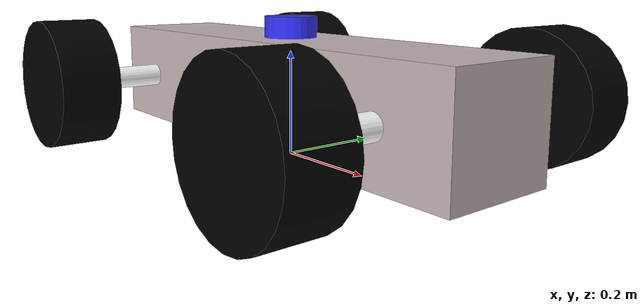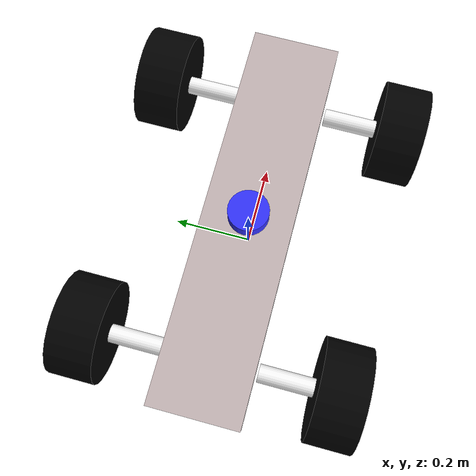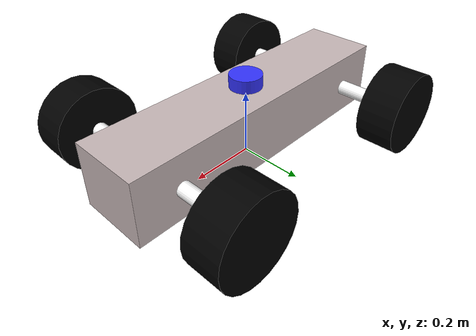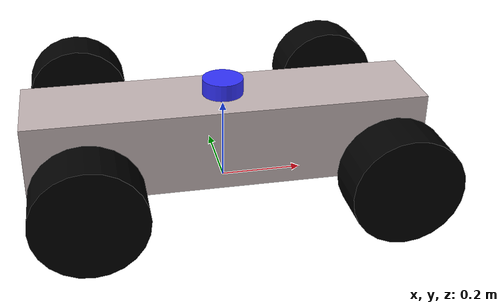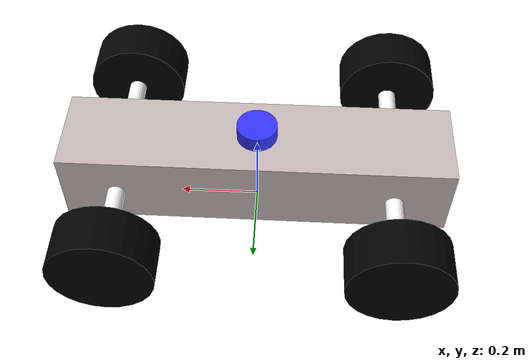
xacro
<?xml version="1.0"?>
<robot xmlns:xacro="http://www.ros.org/wiki/xacro">

    <xacro:include filename="inertial_macros.xacro"/>

    <!-- Colour options for robot -->
    <material name="blue">
        <color rgba="0.2 0.2 1.0 1.0"/>
    </material>

    <material name="black">
        <color rgba="0.0 0.0 0.0 1.0"/>
    </material>

    <material name="white">
        <color rgba="1.0 1.0 1.0 1.0"/>
    </material>

    <material name="silver">
        <!--color rgba="0.62 0.62 0.62 0.5"/-->
        <color rgba="0.78 0.72 0.72 1.0"/>
    </material>

    <!-- Base link is centre of the 2 drive wheels -->
    <link name="base_link">

    </link>

    <!-- Chassis link - box shape with origin just behind the wheels (l/w/h 964.3/231.23/200)-->
    <joint name="chassis_joint" type="fixed">
        <parent link="base_link"/>
        <child link="chassis"/>
        <origin xyz="0 0 0.12725"/>
    </joint>

    <link name="chassis">
        <visual>
            <origin xyz="0 0 0"/>
            <geometry>
                <box size="0.96423 0.22 0.2"/>
            </geometry>
            <material name="silver"/>
        </visual>
        <collision>
            <origin xyz="0 0 0"/>
            <geometry>
                <box size="0.96423 0.22 0.2"/>
            </geometry>
        </collision>
        <xacro:inertial_box mass="0.5" x="0.3" y="0.3" z="0.15">
            <origin xyz="0 0 0" rpy="0 0 0"/>
        </xacro:inertial_box>
    </link>

    <!-- Left front wheel link -->

    <joint name="left_front_wheel_joint" type="continuous">
        <parent link="base_link" />
        <child link="left_front_wheel"/>
        <origin xyz="-0.34264 -0.309055 0.12725" rpy="-${pi/2} 0 0"/>
        <axis xyz="-0.34264 -0.309055 0.12725"/>
    </joint>

    <link name="left_front_wheel">
        <visual>
            <origin xyz="0 0 0"/>
            <geometry>
                <cylinder radius="0.12725" length="0.1144"/>
            </geometry>
            <material name="black"/>
        </visual>
        <collision>
            <origin xyz="0 0 0"/>
            <geometry>
                <cylinder radius="0.12725" length="0.1144"/>
            </geometry>
        </collision>
        <xacro:inertial_cylinder mass="0.1" length="0.1144" radius="0.12725">
            <origin xyz="0 0 0" rpy="0 0 0"/>
        </xacro:inertial_cylinder>
    </link>

    <!-- To show colour on gazebo -->

    <gazebo reference="left_front_wheel">
        <material>Gazebo/Black</material>
    </gazebo>

    <!-- Left back wheel link -->

    <joint name="left_back_wheel_joint" type="continuous">
        <parent link="base_link" />
        <child link="left_back_wheel"/>
        <origin xyz="0.34264 -0.309055 0.12725" rpy="-${pi/2} 0 0"/>
        <axis xyz="0.34264 -0.309055 0.12725"/>
    </joint>

    <link name="left_back_wheel">
        <visual>
            <origin xyz="0 0 0"/>
            <geometry>
                <cylinder radius="0.12725" length="0.1144"/>
            </geometry>
            <material name="black"/>
        </visual>
        <collision>
            <origin xyz="0 0 0"/>
            <geometry>
                <cylinder radius="0.12725" length="0.1144"/>
            </geometry>
        </collision>
        <xacro:inertial_cylinder mass="0.1" length="0.1144" radius="0.12725">
            <origin xyz="0 0 0" rpy="0 0 0"/>
        </xacro:inertial_cylinder>
    </link>

    <gazebo reference="left_back_wheel">
        <material>Gazebo/Black</material>
    </gazebo>

     <!-- Right front wheel link -->

    <joint name="right_front_wheel_joint" type="continuous">
        <parent link="base_link" />
        <child link="right_front_wheel"/>
        <origin xyz="-0.34264 0.309055 0.12725" rpy="${pi/2} 0 0"/>
        <axis xyz="-0.34264 0.309055 0.12725"/>
    </joint>

    <link name="right_front_wheel">
        <visual>
            <origin xyz="0 0 0"/>
            <geometry>
                <cylinder radius="0.12725" length="0.1144"/>
            </geometry>
            <material name="black"/>
        </visual>
        <collision>
            <origin xyz="0 0 0"/>
            <geometry>
                <cylinder radius="0.12725" length="0.1144"/>
            </geometry>
        </collision>
        <xacro:inertial_cylinder mass="0.1" length="0.1144" radius="0.12725">
            <origin xyz="0 0 0" rpy="0 0 0"/>
        </xacro:inertial_cylinder>
    </link>

    <gazebo reference="right_front_wheel">
        <material>Gazebo/Black</material>
    </gazebo>

     <!-- Right back wheel link -->

    <joint name="right_back_wheel_joint" type="continuous">
        <parent link="base_link" />
        <child link="right_back_wheel"/>
        <origin xyz="0.34264 0.309055 0.12725" rpy="${pi/2} 0 0"/>
        <axis xyz="0.34264 0.309055 0.12725"/>
    </joint>

    <link name="right_back_wheel">
        <visual>
            <origin xyz="0 0 0"/>
            <geometry>
                <cylinder radius="0.12725" length="0.1144"/>
            </geometry>
            <material name="black"/>
        </visual>
        <collision>
            <origin xyz="0 0 0"/>
            <geometry>
                <cylinder radius="0.12725" length="0.1144"/>
            </geometry>
        </collision>
        <xacro:inertial_cylinder mass="0.1" length="0.1144" radius="0.12725">
            <origin xyz="0 0 0" rpy="0 0 0"/>
        </xacro:inertial_cylinder>
    </link>

    <gazebo reference="right_back_wheel">
        <material>Gazebo/Black</material>
    </gazebo>

    <!-- Left front suspension -->

    <joint name="left_front_suspension_joint" type="fixed">
        <parent link="base_link"/>
        <child link="left_front_suspension"/>
        <origin xyz="-0.34264 -0.183735 0.12725" rpy="${pi/2} 0 0"/>
        <axis xyz="-0.34264 -0.183735 0.12725"/>
    </joint>

    <link name="left_front_suspension">
        <visual>
            <origin xyz="0 0 0"/>
            <geometry>
                <cylinder radius="0.0225" length="0.13624"/>
            </geometry>
            <material name="white"/>
        </visual>
        <collision>
            <origin xyz="0 0 0"/>
            <geometry>
                <cylinder radius="0.0225" length="0.13624"/>
            </geometry>
        </collision>
        <xacro:inertial_cylinder mass="0.1" length="0.13624" radius="0.0225">
            <origin xyz="0 0 0" rpy="0 0 0"/>
        </xacro:inertial_cylinder>
    </link>

    <gazebo reference="left_front_suspension">
        <material>Gazebo/White</material>
    </gazebo>

    <!-- Left back suspension -->

    <joint name="left_back_suspension_joint" type="fixed">
        <parent link="base_link"/>
        <child link="left_back_suspension"/>
        <origin xyz="0.34264 -0.183735 0.12725" rpy="${pi/2} 0 0"/>
        <axis xyz="0.34264 -0.183735 0.12725"/>
    </joint>

    <link name="left_back_suspension">
        <visual>
            <origin xyz="0 0 0"/>
            <geometry>
                <cylinder radius="0.0225" length="0.13624"/>
            </geometry>
            <material name="white"/>
        </visual>
        <collision>
            <origin xyz="0 0 0"/>
            <geometry>
                <cylinder radius="0.0255" length="0.13624"/>
            </geometry>
        </collision>
        <xacro:inertial_cylinder mass="0.1" length="0.13624" radius="0.0225">
            <origin xyz="0 0 0" rpy="0 0 0"/>
        </xacro:inertial_cylinder>
    </link>

    <gazebo reference="left_back_suspension">
        <material>Gazebo/White</material>
    </gazebo>

    <!-- Right front suspension -->

    <joint name="right_front_suspension_joint" type="fixed">
        <parent link="base_link"/>
        <child link="right_front_suspension"/>
        <origin xyz="-0.34264 0.183735 0.12725" rpy="${pi/2} 0 0"/>
        <axis xyz="-0.34264 0.183735 0.12725"/>
    </joint>

    <link name="right_front_suspension">
        <visual>
            <origin xyz="0 0 0"/>
            <geometry>
                <cylinder radius="0.0225" length="0.13624"/>
            </geometry>
            <material name="white"/>
        </visual>
        <collision>
            <origin xyz="0 0 0"/>
            <geometry>
                <cylinder radius="0.0225" length="0.13624"/>
            </geometry>
        </collision>
        <xacro:inertial_cylinder mass="0.1" length="0.13624" radius="0.0255">
            <origin xyz="0 0 0" rpy="0 0 0"/>
        </xacro:inertial_cylinder>
    </link>

    <gazebo reference="right_front_suspension">
        <material>Gazebo/White</material>
    </gazebo>

    <!-- Right back suspension -->

    <joint name="right_back_suspension_joint" type="fixed">
        <parent link="base_link"/>
        <child link="right_back_suspension"/>
        <origin xyz="0.34264 0.183735 0.12725" rpy="${pi/2} 0 0"/>
        <axis xyz="0.34264 0.183735 0.12725"/>
    </joint>

    <link name="right_back_suspension">
        <visual>
            <origin xyz="0 0 0"/>
            <geometry>
                <cylinder radius="0.0225" length="0.13624"/>
            </geometry>
            <material name="white"/>
        </visual>
        <collision>
            <origin xyz="0 0 0"/>
            <geometry>
                <cylinder radius="0.0225" length="0.13624"/>
            </geometry>
        </collision>
        <xacro:inertial_cylinder mass="0.1" length="0.13624" radius="0.0225">
            <origin xyz="0 0 0" rpy="0 0 0"/>
        </xacro:inertial_cylinder>
    </link>

    <gazebo reference="right_back_suspension">
        <material>Gazebo/White</material>
    </gazebo>

    <joint name="lidar_joint" type="fixed">
        <parent link="chassis"/>
        <child link="lidar_frame"/>
        <origin xyz="0 0 0.12" rpy="0 0 0"/>
    </joint>

    <link name="lidar_frame">
        <visual>
            <geometry>
                <cylinder radius="0.05" length="0.04"/>
            </geometry>
            <material name="blue"/>
        </visual>
        <collision>
            <geometry>
                <cylinder radius="0.05" length="0.04"/>
            </geometry>
        </collision>
        <xacro:inertial_cylinder mass="0.1" length="0.04" radius="0.05">
            <origin xyz="0 0 0.12" rpy="0 0 0"/>
        </xacro:inertial_cylinder>
    </link>

    <gazebo reference="lidar_frame">
        <sensor name="lidar" type="gpu_ray">  <!-- ray means its a scanning laser -->
            <pose> 0 0 0 0 0 0 </pose>  <!-- origin of lidar is at origin of link -->
            <visualize>true</visualize>
            <update_rate>10</update_rate> <!-- update laser 10 times a second -->
            <ray>
                <scan>
                    <horizontal> <!-- scanning horizontally with 360 samples a resolution -->
                        <samples>360</samples>
                        <resolution>1</resolution>
                        <min_angle>-3.14</min_angle>  <!-- angle of -180 to 180 degrees in radians -->
                        <max_angle>3.14</max_angle>
                    </horizontal>
                </scan>
                <range>
                    <min>0.3</min>
                    <max>12</max>
                    <resolution>0.01</resolution>
                </range>
            </ray>
            <plugin name="laser_controller" filename="libgazebo_ros_gpu_laser.so">
                <topicName>/rrbot/laser/scan</topicName>
                <frameName>lidar_frame</frameName>
            </plugin>
        </sensor>
    </gazebo>

    <!-- https://github.com/harshmittal2210/Robotics_ws/tree/main -->

    <gazebo>
        <plugin name="skid_steer_drive_controller" filename="libgazebo_ros_skid_steer_drive.so">
            <updateRate>10.0</updateRate>
            <robotNamespace>/</robotNamespace>
            <leftFrontJoint>left_front_suspension_joint</leftFrontJoint>
            <rightFrontJoint>right_front_suspension_joint</rightFrontJoint>
            <leftRearJoint>left_back_suspension_joint</leftRearJoint>
            <rightRearJoint>right_back_suspension_joint</rightRearJoint>
            <wheelSeparation>0.61811</wheelSeparation>
            <wheelDiameter>0.2545</wheelDiameter>
            <robotBaseFrame>base_link</robotBaseFrame>
            <torque>10</torque>

            <topicName>cmd_vel</topicName>
            <odometryTopic>odom</odometryTopic>
            <odometryFrame>odom</odometryFrame>

            <commandTopic>cmd_vel</commandTopic>
            <topic_name_twist>cmd_vel</topic_name_twist>
            <topic_name_odometry>odom</topic_name_odometry>
            <topic_name_joint>joint</topic_name_joint>

            <broadcastTF>true</broadcastTF>

            <covariance_x>0.0001</covariance_x>
            <covariance_y>0.0001</covariance_y>
            <covariance_yaw>0.01</covariance_yaw>
        </plugin>
    </gazebo>

</robot>
